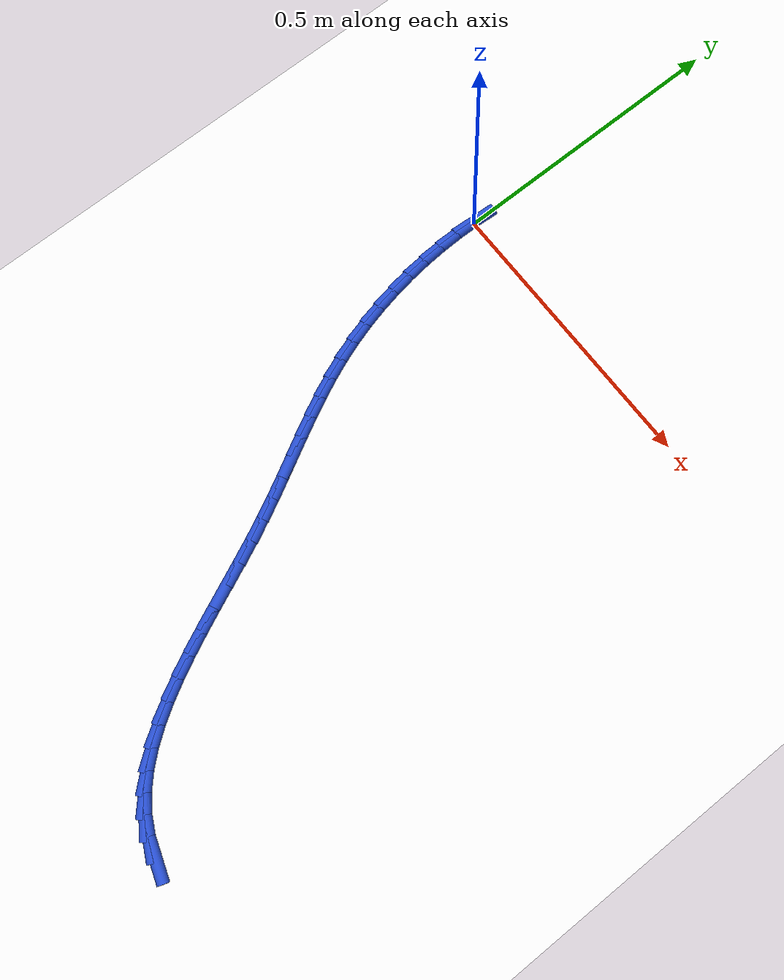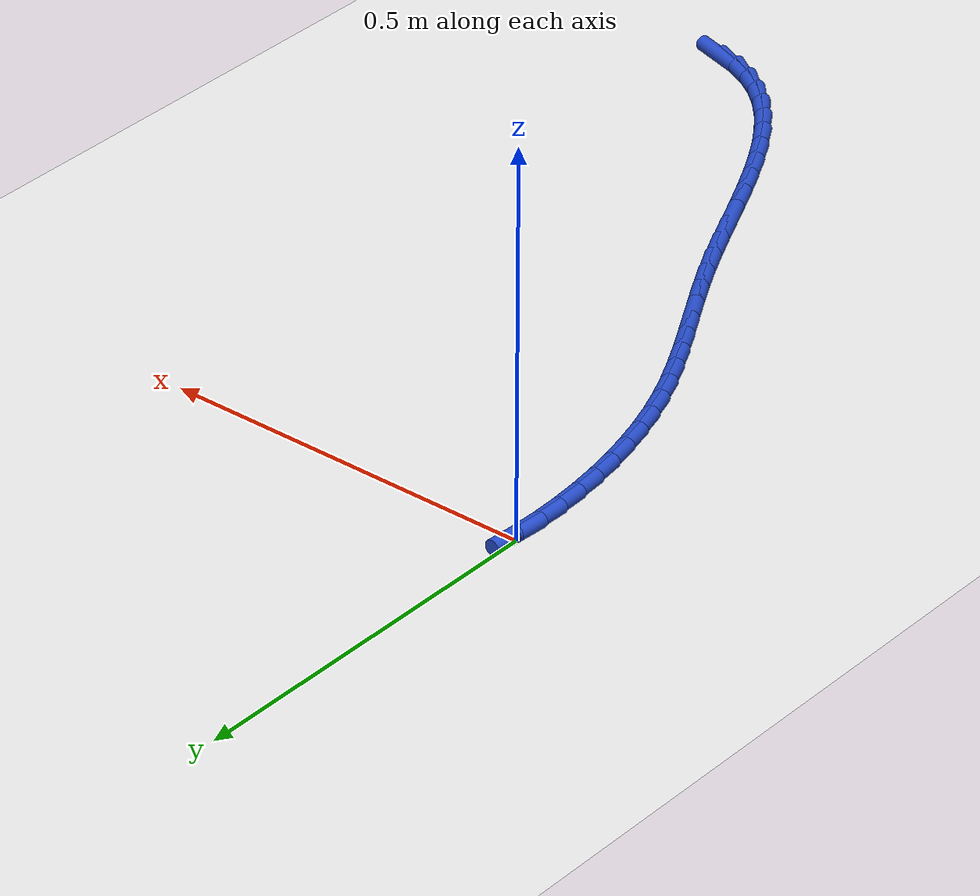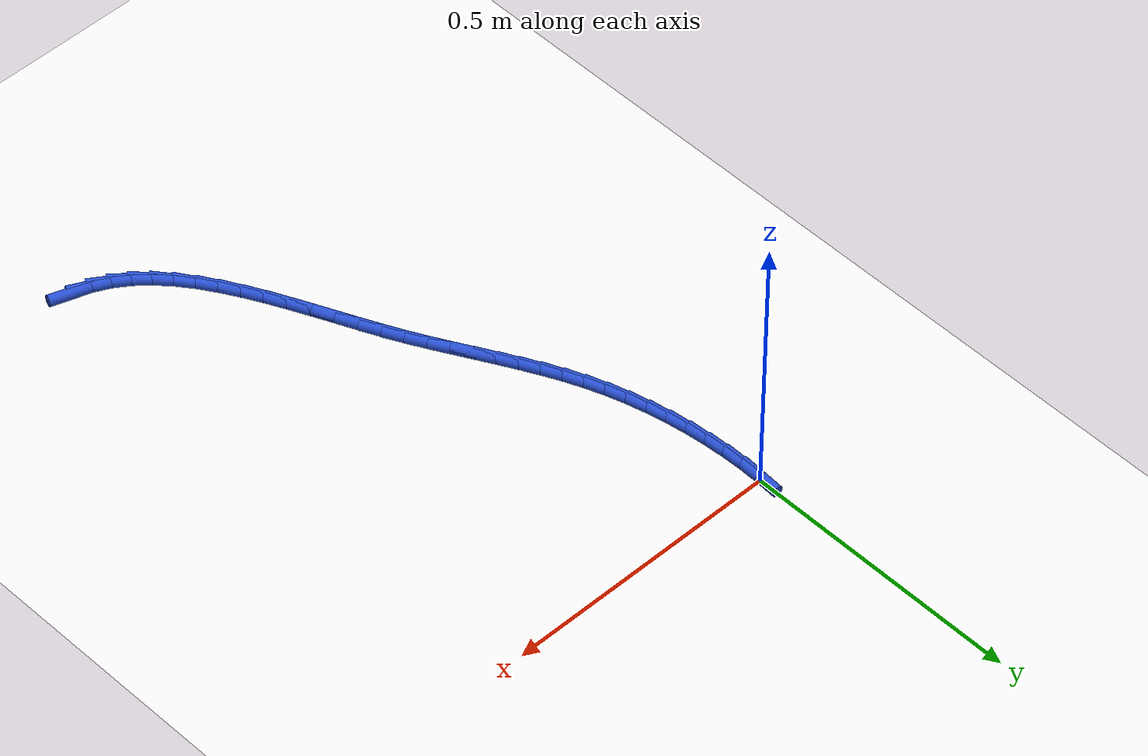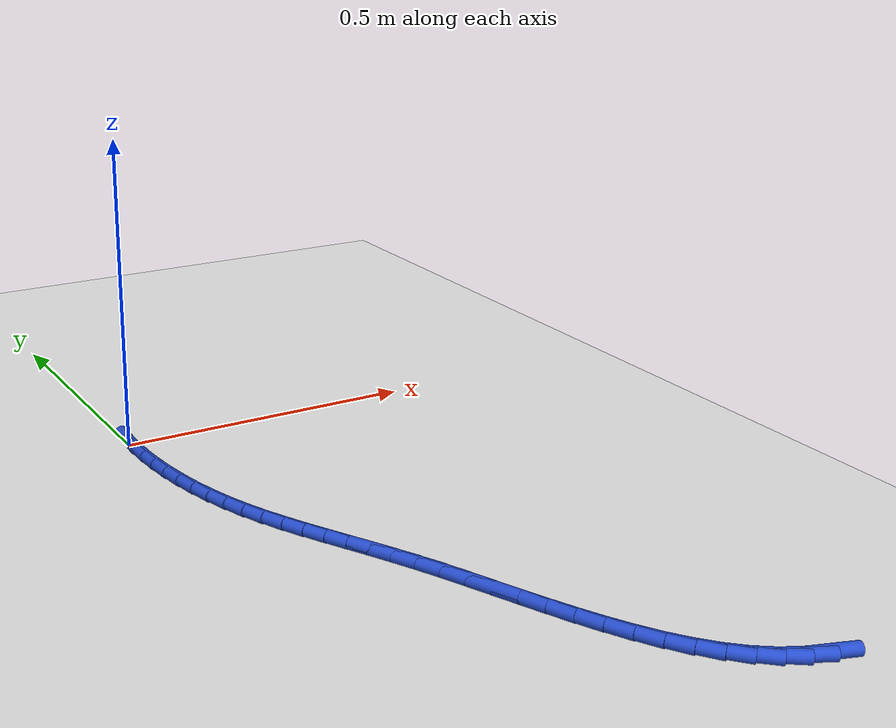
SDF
<sdf version="1.6">
 <world name="default">
  <model name="ground_plane">
   <static>1</static>
   <link name="link">
    <collision name="collision">
     <geometry><plane><normal>0 0 1</normal><size>100 100</size></plane></geometry>
     <surface><friction><ode><mu>100</mu><mu2>50</mu2></ode></friction></surface>
    </collision>
    <visual name="visual">
     <cast_shadows>0</cast_shadows>
     <geometry><plane><normal>0 0 1</normal><size>100 100</size></plane></geometry>
     <material>
      <script><uri>file://media/materials/scripts/gazebo.material</uri><name>Gazebo/WhiteGlow</name></script>
     </material>
    </visual>
   </link>
  </model>
  <model name="line">
   <link name="link_0">
    <pose>-1.734723475976807e-18 -6.938893903907228e-18 0.01 0 1.57 1.5066727655770424</pose>
    <collision name="collision">
     <geometry><cylinder><radius>0.01</radius><length>0.08</length></cylinder></geometry>
    </collision>
    <visual name="visual">
     <material>
      <script><name>Gazebo/Blue</name><uri>file://media/materials/scripts/gazebo.material</uri></script>
     </material>
     <geometry><cylinder><radius>0.01</radius><length>0.08</length></cylinder></geometry>
    </visual>
   </link>
   <link name="link_168">
    <pose>0.5007349988676117 -1.0116321162528361 0.01 0 1.57 -0.3136099513644126</pose>
    <collision name="collision">
     <geometry><cylinder><radius>0.01</radius><length>0.08</length></cylinder></geometry>
    </collision>
    <visual name="visual">
     <material>
      <script><name>Gazebo/Blue</name><uri>file://media/materials/scripts/gazebo.material</uri></script>
     </material>
     <geometry><cylinder><radius>0.01</radius><length>0.08</length></cylinder></geometry>
    </visual>
   </link>
   <link name="link_169">
    <pose>0.4696719867621467 -1.0015579932036713 0.01 0 1.57 -0.45351096277529124</pose>
    <collision name="collision">
     <geometry><cylinder><radius>0.01</radius><length>0.08</length></cylinder></geometry>
    </collision>
    <visual name="visual">
     <material>
      <script><name>Gazebo/Blue</name><uri>file://media/materials/scripts/gazebo.material</uri></script>
     </material>
     <geometry><cylinder><radius>0.01</radius><length>0.08</length></cylinder></geometry>
    </visual>
   </link>
   <link name="link_170">
    <pose>0.44078102407856307 -0.9874767500950601 0.01 0 1.57 -0.5984474122109261</pose>
    <collision name="collision">
     <geometry><cylinder><radius>0.01</radius><length>0.08</length></cylinder></geometry>
    </collision>
    <visual name="visual">
     <material>
      <script><name>Gazebo/Blue</name><uri>file://media/materials/scripts/gazebo.material</uri></script>
     </material>
     <geometry><cylinder><radius>0.01</radius><length>0.08</length></cylinder></geometry>
    </visual>
   </link>
   <link name="link_171">
    <pose>0.4141045385862517 -0.9692871227899921 0.01 0 1.57 -0.7261439878181086</pose>
    <collision name="collision">
     <geometry><cylinder><radius>0.01</radius><length>0.08</length></cylinder></geometry>
    </collision>
    <visual name="visual">
     <material>
      <script><name>Gazebo/Blue</name><uri>file://media/materials/scripts/gazebo.material</uri></script>
     </material>
     <geometry><cylinder><radius>0.01</radius><length>0.08</length></cylinder></geometry>
    </visual>
   </link>
   <link name="link_172">
    <pose>0.38943754924118634 -0.9473829060424354 0.01 0 1.57 -0.833624777192586</pose>
    <collision name="collision">
     <geometry><cylinder><radius>0.01</radius><length>0.08</length></cylinder></geometry>
    </collision>
    <visual name="visual">
     <material>
      <script><name>Gazebo/Blue</name><uri>file://media/materials/scripts/gazebo.material</uri></script>
     </material>
     <geometry><cylinder><radius>0.01</radius><length>0.08</length></cylinder></geometry>
    </visual>
   </link>
   <link name="link_173">
    <pose>0.3665609721431304 -0.922186114071375 0.01 0 1.57 -0.9215119572024623</pose>
    <collision name="collision">
     <geometry><cylinder><radius>0.01</radius><length>0.08</length></cylinder></geometry>
    </collision>
    <visual name="visual">
     <material>
      <script><name>Gazebo/Blue</name><uri>file://media/materials/scripts/gazebo.material</uri></script>
     </material>
     <geometry><cylinder><radius>0.01</radius><length>0.08</length></cylinder></geometry>
    </visual>
   </link>
   <link name="link_174">
    <pose>0.34525572339184724 -0.8941187610957962 0.01 0 1.57 -0.991715156593089</pose>
    <collision name="collision">
     <geometry><cylinder><radius>0.01</radius><length>0.08</length></cylinder></geometry>
    </collision>
    <visual name="visual">
     <material>
      <script><name>Gazebo/Blue</name><uri>file://media/materials/scripts/gazebo.material</uri></script>
     </material>
     <geometry><cylinder><radius>0.01</radius><length>0.08</length></cylinder></geometry>
    </visual>
   </link>
   <link name="link_175">
    <pose>0.3253027190871002 -0.8636028613346837 0.01 0 1.57 -1.04647276233953</pose>
    <collision name="collision">
     <geometry><cylinder><radius>0.01</radius><length>0.08</length></cylinder></geometry>
    </collision>
    <visual name="visual">
     <material>
      <script><name>Gazebo/Blue</name><uri>file://media/materials/scripts/gazebo.material</uri></script>
     </material>
     <geometry><cylinder><radius>0.01</radius><length>0.08</length></cylinder></geometry>
    </visual>
   </link>
   <link name="link_176">
    <pose>0.30648287532865265 -0.8310604290070225 0.01 0 1.57 -1.0878403293264705</pose>
    <collision name="collision">
     <geometry><cylinder><radius>0.01</radius><length>0.08</length></cylinder></geometry>
    </collision>
    <visual name="visual">
     <material>
      <script><name>Gazebo/Blue</name><uri>file://media/materials/scripts/gazebo.material</uri></script>
     </material>
     <geometry><cylinder><radius>0.01</radius><length>0.08</length></cylinder></geometry>
    </visual>
   </link>
   <link name="link_177">
    <pose>0.28857710821626803 -0.7969134783317976 0.01 0 1.57 -1.1174807654663392</pose>
    <collision name="collision">
     <geometry><cylinder><radius>0.01</radius><length>0.08</length></cylinder></geometry>
    </collision>
    <visual name="visual">
     <material>
      <script><name>Gazebo/Blue</name><uri>file://media/materials/scripts/gazebo.material</uri></script>
     </material>
     <geometry><cylinder><radius>0.01</radius><length>0.08</length></cylinder></geometry>
    </visual>
   </link>
   <link name="link_178">
    <pose>0.27136633384970976 -0.7615840235279944 0.01 0 1.57 -1.1366090204522994</pose>
    <collision name="collision">
     <geometry><cylinder><radius>0.01</radius><length>0.08</length></cylinder></geometry>
    </collision>
    <visual name="visual">
     <material>
      <script><name>Gazebo/Blue</name><uri>file://media/materials/scripts/gazebo.material</uri></script>
     </material>
     <geometry><cylinder><radius>0.01</radius><length>0.08</length></cylinder></geometry>
    </visual>
   </link>
   <link name="link_179">
    <pose>0.25463146832874095 -0.7254940788145974 0.01 0 1.57 -1.1459979571026169</pose>
    <collision name="collision">
     <geometry><cylinder><radius>0.01</radius><length>0.08</length></cylinder></geometry>
    </collision>
    <visual name="visual">
     <material>
      <script><name>Gazebo/Blue</name><uri>file://media/materials/scripts/gazebo.material</uri></script>
     </material>
     <geometry><cylinder><radius>0.01</radius><length>0.08</length></cylinder></geometry>
    </visual>
   </link>
   <link name="link_180">
    <pose>0.23815342775312526 -0.6890656584105919 0.01 0 1.57 -1.1459968883131533</pose>
    <collision name="collision">
     <geometry><cylinder><radius>0.01</radius><length>0.08</length></cylinder></geometry>
    </collision>
    <visual name="visual">
     <material>
      <script><name>Gazebo/Blue</name><uri>file://media/materials/scripts/gazebo.material</uri></script>
     </material>
     <geometry><cylinder><radius>0.01</radius><length>0.08</length></cylinder></geometry>
    </visual>
   </link>
   <link name="link_181">
    <pose>0.22171312822262595 -0.6527207765349626 0.01 0 1.57 -1.1365404270475432</pose>
    <collision name="collision">
     <geometry><cylinder><radius>0.01</radius><length>0.08</length></cylinder></geometry>
    </collision>
    <visual name="visual">
     <material>
      <script><name>Gazebo/Blue</name><uri>file://media/materials/scripts/gazebo.material</uri></script>
     </material>
     <geometry><cylinder><radius>0.01</radius><length>0.08</length></cylinder></geometry>
    </visual>
   </link>
   <link name="link_182">
    <pose>0.20509148583700643 -0.6168814474066948 0.01 0 1.57 -1.1171540107767144</pose>
    <collision name="collision">
     <geometry><cylinder><radius>0.01</radius><length>0.08</length></cylinder></geometry>
    </collision>
    <visual name="visual">
     <material>
      <script><name>Gazebo/Blue</name><uri>file://media/materials/scripts/gazebo.material</uri></script>
     </material>
     <geometry><cylinder><radius>0.01</radius><length>0.08</length></cylinder></geometry>
    </visual>
   </link>
   <link name="link_183">
    <pose>0.18806979886842332 -0.5819691214077685 0.01 0 1.57 -1.0920640975166493</pose>
    <collision name="collision">
     <geometry><cylinder><radius>0.01</radius><length>0.08</length></cylinder></geometry>
    </collision>
    <visual name="visual">
     <material>
      <script><name>Gazebo/Blue</name><uri>file://media/materials/scripts/gazebo.material</uri></script>
     </material>
     <geometry><cylinder><radius>0.01</radius><length>0.08</length></cylinder></geometry>
    </visual>
   </link>
   <link name="link_184">
    <pose>0.1705543953821776 -0.5482207865535926 0.01 0 1.57 -1.0735847402055971</pose>
    <collision name="collision">
     <geometry><cylinder><radius>0.01</radius><length>0.08</length></cylinder></geometry>
    </collision>
    <visual name="visual">
     <material>
      <script><name>Gazebo/Blue</name><uri>file://media/materials/scripts/gazebo.material</uri></script>
     </material>
     <geometry><cylinder><radius>0.01</radius><length>0.08</length></cylinder></geometry>
    </visual>
   </link>
   <link name="link_185">
    <pose>0.15275609873285984 -0.5154241945594955 0.01 0 1.57 -1.0642183495813762</pose>
    <collision name="collision">
     <geometry><cylinder><radius>0.01</radius><length>0.08</length></cylinder></geometry>
    </collision>
    <visual name="visual">
     <material>
      <script><name>Gazebo/Blue</name><uri>file://media/materials/scripts/gazebo.material</uri></script>
     </material>
     <geometry><cylinder><radius>0.01</radius><length>0.08</length></cylinder></geometry>
    </visual>
   </link>
   <link name="link_186">
    <pose>0.13493120509316694 -0.4833000089418125 0.01 0 1.57 -1.0644977785899505</pose>
    <collision name="collision">
     <geometry><cylinder><radius>0.01</radius><length>0.08</length></cylinder></geometry>
    </collision>
    <visual name="visual">
     <material>
      <script><name>Gazebo/Blue</name><uri>file://media/materials/scripts/gazebo.material</uri></script>
     </material>
     <geometry><cylinder><radius>0.01</radius><length>0.08</length></cylinder></geometry>
    </visual>
   </link>
   <link name="link_187">
    <pose>0.11733601063579574 -0.45156889321687865 0.01 0 1.57 -1.074786513101868</pose>
    <collision name="collision">
     <geometry><cylinder><radius>0.01</radius><length>0.08</length></cylinder></geometry>
    </collision>
    <visual name="visual">
     <material>
      <script><name>Gazebo/Blue</name><uri>file://media/materials/scripts/gazebo.material</uri></script>
     </material>
     <geometry><cylinder><radius>0.01</radius><length>0.08</length></cylinder></geometry>
    </visual>
   </link>
   <link name="link_188">
    <pose>0.10022681153344314 -0.4199515109010292 0.01 0 1.57 -1.0952539263774757</pose>
    <collision name="collision">
     <geometry><cylinder><radius>0.01</radius><length>0.08</length></cylinder></geometry>
    </collision>
    <visual name="visual">
     <material>
      <script><name>Gazebo/Blue</name><uri>file://media/materials/scripts/gazebo.material</uri></script>
     </material>
     <geometry><cylinder><radius>0.01</radius><length>0.08</length></cylinder></geometry>
    </visual>
   </link>
   <link name="link_189">
    <pose>0.08385990395880599 -0.3881685255105992 0.01 0 1.57 -1.1258286707930965</pose>
    <collision name="collision">
     <geometry><cylinder><radius>0.01</radius><length>0.08</length></cylinder></geometry>
    </collision>
    <visual name="visual">
     <material>
      <script><name>Gazebo/Blue</name><uri>file://media/materials/scripts/gazebo.material</uri></script>
     </material>
     <geometry><cylinder><radius>0.01</radius><length>0.08</length></cylinder></geometry>
    </visual>
   </link>
   <link name="link_190">
    <pose>0.06849158408458118 -0.35594060056192395 0.01 0 1.57 -1.1661336601195134</pose>
    <collision name="collision">
     <geometry><cylinder><radius>0.01</radius><length>0.08</length></cylinder></geometry>
    </collision>
    <visual name="visual">
     <material>
      <script><name>Gazebo/Blue</name><uri>file://media/materials/scripts/gazebo.material</uri></script>
     </material>
     <geometry><cylinder><radius>0.01</radius><length>0.08</length></cylinder></geometry>
    </visual>
   </link>
   <link name="link_191">
    <pose>0.05437814808346561 -0.3229883995713386 0.01 0 1.57 -1.2150448005111896</pose>
    <collision name="collision">
     <geometry><cylinder><radius>0.01</radius><length>0.08</length></cylinder></geometry>
    </collision>
    <visual name="visual">
     <material>
      <script><name>Gazebo/Blue</name><uri>file://media/materials/scripts/gazebo.material</uri></script>
     </material>
     <geometry><cylinder><radius>0.01</radius><length>0.08</length></cylinder></geometry>
    </visual>
   </link>
   <link name="link_192">
    <pose>0.04176764934565718 -0.2890490819149709 0.01 0 1.57 -1.2659253734524838</pose>
    <collision name="collision">
     <geometry><cylinder><radius>0.01</radius><length>0.08</length></cylinder></geometry>
    </collision>
    <visual name="visual">
     <material>
      <script><name>Gazebo/Blue</name><uri>file://media/materials/scripts/gazebo.material</uri></script>
     </material>
     <geometry><cylinder><radius>0.01</radius><length>0.08</length></cylinder></geometry>
    </visual>
   </link>
   <link name="link_193">
    <pose>0.030776893343713085 -0.25412246672584093 0.01 0 1.57 -1.3144212076283317</pose>
    <collision name="collision">
     <geometry><cylinder><radius>0.01</radius><length>0.08</length></cylinder></geometry>
    </collision>
    <visual name="visual">
     <material>
      <script><name>Gazebo/Blue</name><uri>file://media/materials/scripts/gazebo.material</uri></script>
     </material>
     <geometry><cylinder><radius>0.01</radius><length>0.08</length></cylinder></geometry>
    </visual>
   </link>
   <link name="link_194">
    <pose>0.021417445015009282 -0.21841898564712256 0.01 0 1.57 -1.3610563613188937</pose>
    <collision name="collision">
     <geometry><cylinder><radius>0.01</radius><length>0.08</length></cylinder></geometry>
    </collision>
    <visual name="visual">
     <material>
      <script><name>Gazebo/Blue</name><uri>file://media/materials/scripts/gazebo.material</uri></script>
     </material>
     <geometry><cylinder><radius>0.01</radius><length>0.08</length></cylinder></geometry>
    </visual>
   </link>
   <link name="link_195">
    <pose>0.013697907642030892 -0.1821549973307185 0.01 0 1.57 -1.40645395001593</pose>
    <collision name="collision">
     <geometry><cylinder><radius>0.01</radius><length>0.08</length></cylinder></geometry>
    </collision>
    <visual name="visual">
     <material>
      <script><name>Gazebo/Blue</name><uri>file://media/materials/scripts/gazebo.material</uri></script>
     </material>
     <geometry><cylinder><radius>0.01</radius><length>0.08</length></cylinder></geometry>
    </visual>
   </link>
   <link name="link_196">
    <pose>0.007626884507263062 -0.14554686042853113 0.01 0 1.57 -1.4512172785626118</pose>
    <collision name="collision">
     <geometry><cylinder><radius>0.01</radius><length>0.08</length></cylinder></geometry>
    </collision>
    <visual name="visual">
     <material>
      <script><name>Gazebo/Blue</name><uri>file://media/materials/scripts/gazebo.material</uri></script>
     </material>
     <geometry><cylinder><radius>0.01</radius><length>0.08</length></cylinder></geometry>
    </visual>
   </link>
   <link name="link_197">
    <pose>0.0032129788931909158 -0.10881093359246308 0.01 0 1.57 -1.495946438741726</pose>
    <collision name="collision">
     <geometry><cylinder><radius>0.01</radius><length>0.08</length></cylinder></geometry>
    </collision>
    <visual name="visual">
     <material>
      <script><name>Gazebo/Blue</name><uri>file://media/materials/scripts/gazebo.material</uri></script>
     </material>
     <geometry><cylinder><radius>0.01</radius><length>0.08</length></cylinder></geometry>
    </visual>
   </link>
   <link name="link_198">
    <pose>0.00046479408229959957 -0.0721635754744168 0.01 0 1.57 -1.5412565207166251</pose>
    <collision name="collision">
     <geometry><cylinder><radius>0.01</radius><length>0.08</length></cylinder></geometry>
    </collision>
    <visual name="visual">
     <material>
      <script><name>Gazebo/Blue</name><uri>file://media/materials/scripts/gazebo.material</uri></script>
     </material>
     <geometry><cylinder><radius>0.01</radius><length>0.08</length></cylinder></geometry>
    </visual>
   </link>
   <link name="link_199">
    <pose>-0.0006090666429257544 -0.03582114472629493 0.01 0 1.57 1.5537949728827802</pose>
    <collision name="collision">
     <geometry><cylinder><radius>0.01</radius><length>0.08</length></cylinder></geometry>
    </collision>
    <visual name="visual">
     <material>
      <script><name>Gazebo/Blue</name><uri>file://media/materials/scripts/gazebo.material</uri></script>
     </material>
     <geometry><cylinder><radius>0.01</radius><length>0.08</length></cylinder></geometry>
    </visual>
   </link>
  </model>
 </world>
</sdf>
